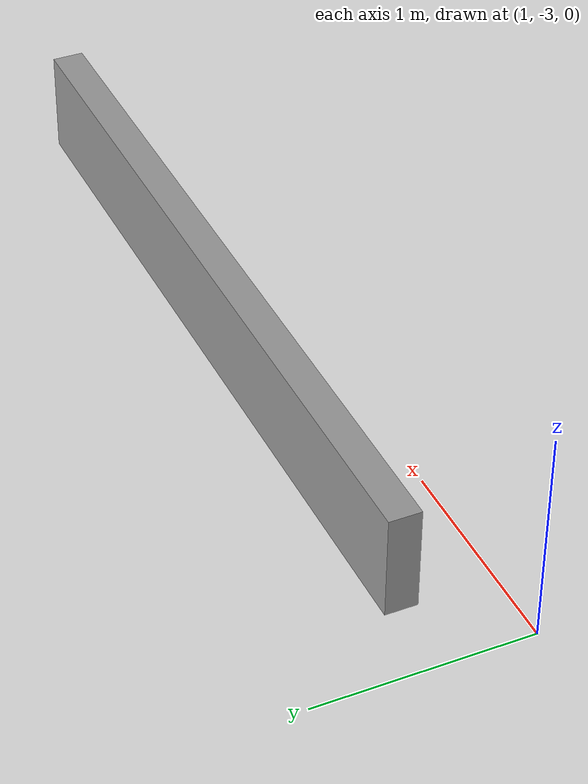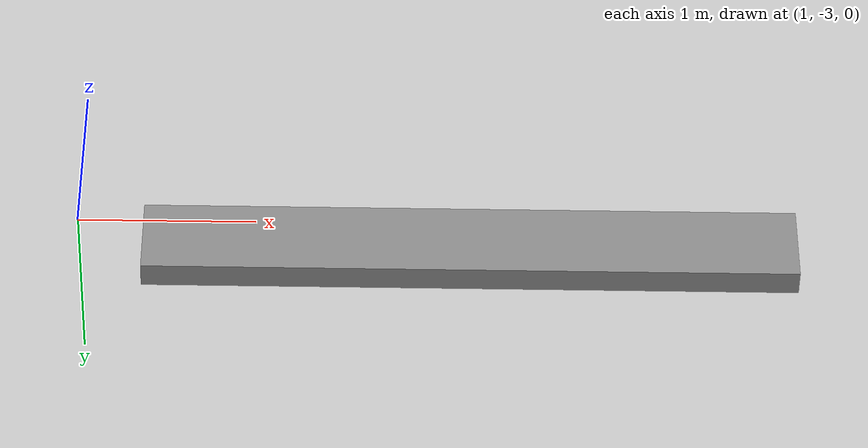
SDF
<?xml version='1.0'?>
<sdf version='1.7'>
  <model name='short_wall_white'>
    <pose>2.545 -1.322 0 0 -0 0</pose>
    <link name='Wall_6'>
      <collision name='Wall_6_Collision'>
        <geometry>
          <box>
            <size>3.75 0.15 0.5</size>
          </box>
        </geometry>
        <pose>0 0 0.25 0 -0 0</pose>
      </collision>
      <visual name='Wall_6_Visual'>
        <pose>0 0 0.25 0 -0 0</pose>
        <geometry>
          <box>
            <size>3.75 0.15 0.5</size>
          </box>
        </geometry>
        <material>
          <script>
            <uri>file://media/materials/scripts/gazebo.material</uri>
            <name>Gazebo/Grey</name>
          </script>
          <ambient>1 1 1 1</ambient>
        </material>
        <meta>
          <layer>0</layer>
        </meta>
      </visual>
      <pose>0.67 -1.247 0 0 -0 0</pose>
    </link>
    <static>1</static>
  </model>
</sdf>
